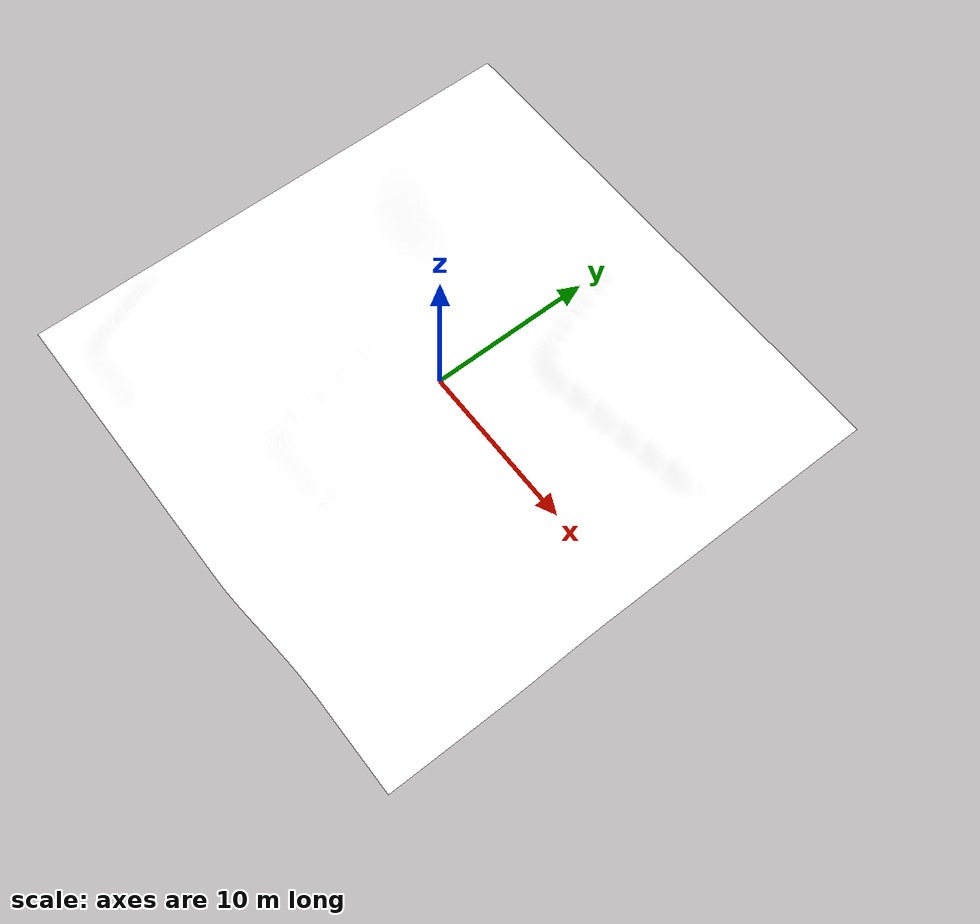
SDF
<?xml version="1.0" ?>
<sdf version="1.6">
  <model name="terrain_1">
    <pose>0 0 0 0 0 0</pose>
    <static>true</static>
    <link name="body">
      <visual name="visual">
        <geometry>
          <mesh><uri>model://terrain_1/media/terrain_1.dae</uri></mesh>
        </geometry>
        <material>
          <ambient>1 1 1 1</ambient>
          <diffuse>1 1 1 1</diffuse>
          <specular>0.1 0.1 0.1 1</specular>
          <pbr>
            <metal>
              <albedo_map>model://terrain_1/media/Textures/Grass.png</albedo_map>
            </metal>
          </pbr>
        </material>
      </visual>
      <collision name="collision">
        <geometry>
          <mesh><uri>model://terrain_1/media/terrain_1.dae</uri></mesh>
        </geometry>
      </collision>
    </link>
  </model>
</sdf>
